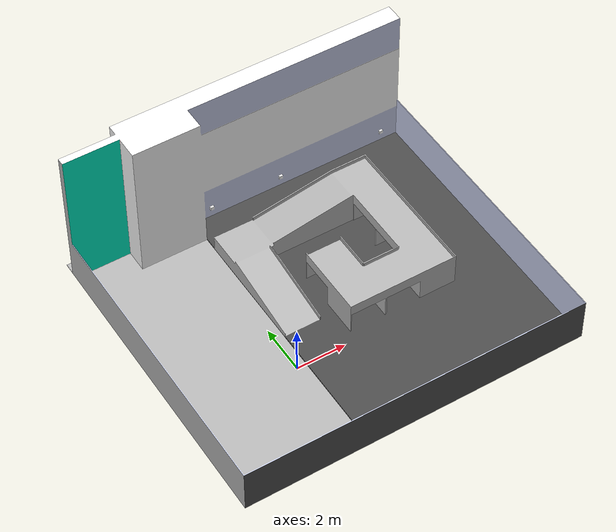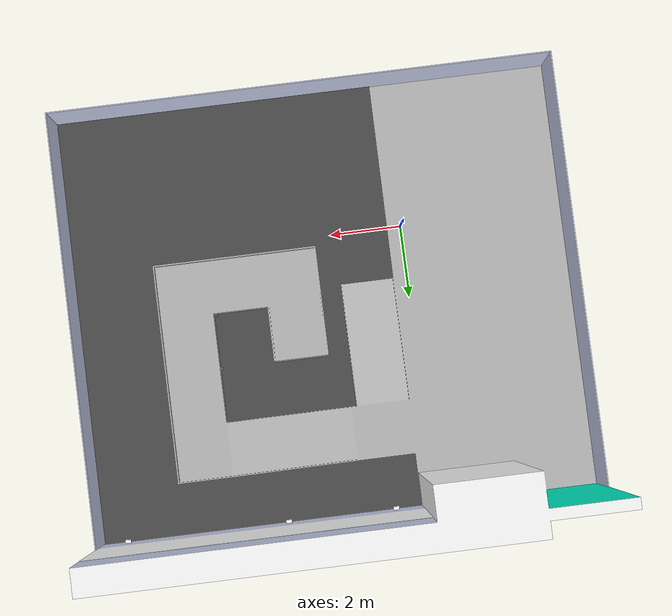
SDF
<?xml version='1.0' encoding='utf-8'?>
<sdf version='1.7'>
  <world name='default'>
    <physics name="1ms" type="ode">  <!-- 启用ODE物理引擎 -->
      <max_step_size>0.001</max_step_size>
      <real_time_factor>1.0</real_time_factor>
    </physics>
    <!-- 物理引擎插件 -->
    <plugin filename="libignition-gazebo-physics-system.so"
      name="ignition::gazebo::systems::Physics">
    </plugin>

    <!-- 场景广播插件（用于GUI显示） -->
    <plugin filename="libignition-gazebo-scene-broadcaster-system.so"
      name="ignition::gazebo::systems::SceneBroadcaster">
    </plugin>

    <!-- 用户指令处理插件 -->
    <plugin filename="libignition-gazebo-user-commands-system.so"
      name="ignition::gazebo::systems::UserCommands">
    </plugin>

    <!-- 传感器系统插件（含激光雷达） -->
    <plugin filename="libignition-gazebo-sensors-system.so"
      name="ignition::gazebo::systems::Sensors">
      <render_engine>ogre2</render_engine>
    </plugin>

    <!-- IMU传感器插件 -->
    <plugin filename="libignition-gazebo-imu-system.so"
      name="ignition::gazebo::systems::Imu">
    </plugin>

    <!-- 接触传感器插件（碰撞检测） -->
    <plugin filename="libignition-gazebo-contact-system.so"
      name="ignition::gazebo::systems::Contact">
    </plugin>

    <!-- 前进（对应键盘按键：上箭头） -->
    <plugin
      filename="libignition-gazebo-triggered-publisher-system.so"
      name="ignition::gazebo::systems::TriggeredPublisher">
      <input type="ignition.msgs.Int32" topic="/keyboard/keypress">
        <match field="data">16777235</match>
      </input>
      <output type="ignition.msgs.Twist" topic="/cmd_vel">
        linear: {x: 0.5}, angular: {z: 0.0}
      </output>
    </plugin>

    <!-- 后退（对应键盘按键：下箭头） -->
    <plugin
      filename="libignition-gazebo-triggered-publisher-system.so"
      name="ignition::gazebo::systems::TriggeredPublisher">
      <input type="ignition.msgs.Int32" topic="/keyboard/keypress">
        <match field="data">16777237</match>
      </input>
      <output type="ignition.msgs.Twist" topic="/cmd_vel">
        linear: {x: -0.5}, angular: {z: 0.0}
      </output>
    </plugin>

    <!-- 左转（对应键盘按键：左箭头） -->
    <plugin
      filename="libignition-gazebo-triggered-publisher-system.so"
      name="ignition::gazebo::systems::TriggeredPublisher">
      <input type="ignition.msgs.Int32" topic="/keyboard/keypress">
        <match field="data">16777234</match>
      </input>
      <output type="ignition.msgs.Twist" topic="/cmd_vel">
        linear: {x: 0.0}, angular: {z: 0.5}
      </output>
    </plugin>

    <!-- 右转（对应键盘按键：右箭头） -->
    <plugin
      filename="libignition-gazebo-triggered-publisher-system.so"
      name="ignition::gazebo::systems::TriggeredPublisher">
      <input type="ignition.msgs.Int32" topic="/keyboard/keypress">
        <match field="data">16777236</match>
      </input>
      <output type="ignition.msgs.Twist" topic="/cmd_vel">
        linear: {x: 0.0}, angular: {z: -0.5}
      </output>
    </plugin>

    <!-- 暂停 （对应键盘按键：空格键） -->
    <plugin
      filename="libignition-gazebo-triggered-publisher-system.so"
      name="ignition::gazebo::systems::TriggeredPublisher">
      <input type="ignition.msgs.Int32" topic="/keyboard/keypress">
        <match field="data">81</match>
      </input>
      <output type="ignition.msgs.Twist" topic="/cmd_vel">
        linear: {x: 0.0}, angular: {z: 0.0}
      </output>
    </plugin>

        <!-- W键：增加线速度 -->
    <plugin
      filename="libignition-gazebo-triggered-publisher-system.so"
      name="ignition::gazebo::systems::TriggeredPublisher">
      <input type="ignition.msgs.Int32" topic="/keyboard/keypress">
        <match field="data">87</match>
      </input>
      <output type="ignition.msgs.Twist" topic="/cmd_vel">
        linear: {x: 1.5}, angular: {z: 0.0}
      </output>
    </plugin>

    <!-- S键：减小线速度（更大的反向速度） -->
    <plugin
      filename="libignition-gazebo-triggered-publisher-system.so"
      name="ignition::gazebo::systems::TriggeredPublisher">
      <input type="ignition.msgs.Int32" topic="/keyboard/keypress">
        <match field="data">83</match>
      </input>
      <output type="ignition.msgs.Twist" topic="/cmd_vel">
        linear: {x: -1.5}, angular: {z: 0.0}
      </output>
    </plugin>

    <!-- A键：增加角速度（更快左转） -->
    <plugin
      filename="libignition-gazebo-triggered-publisher-system.so"
      name="ignition::gazebo::systems::TriggeredPublisher">
      <input type="ignition.msgs.Int32" topic="/keyboard/keypress">
        <match field="data">65</match>
      </input>
      <output type="ignition.msgs.Twist" topic="/cmd_vel">
        linear: {x: 0.0}, angular: {z: 1.0}
      </output>
    </plugin>

    <!-- D键：减小角速度（更快右转） -->
    <plugin
      filename="libignition-gazebo-triggered-publisher-system.so"
      name="ignition::gazebo::systems::TriggeredPublisher">
      <input type="ignition.msgs.Int32" topic="/keyboard/keypress">
        <match field="data">68</match>
      </input>
      <output type="ignition.msgs.Twist" topic="/cmd_vel">
        linear: {x: 0.0}, angular: {z: -1.0}
      </output>
    </plugin>

    <!-- 平行光设置 -->
    <light type='directional' name='direct_light'>
      <visualize>false</visualize>
      <cast_shadows>true</cast_shadows>
      <pose>14.6 7.9 10 0 0 0</pose>
      <diffuse>1.0 1.0 1.0 1</diffuse>
      <specular>0.5 0.5 0.5 1</specular>
      <attenuation>
        <range>1000</range>
        <constant>0.9</constant>
        <linear>0.01</linear>
        <quadratic>0.001</quadratic>
      </attenuation>
      <direction>0 0 -1</direction>
    </light>

    <!-- 环境模型 -->

    <model name='field_description'>
      <include>
        <uri>model://field_description</uri>
      </include>
      <pose>0 0 0 0 0 0</pose>
      <static>true</static>
    </model>

  </world>
</sdf>

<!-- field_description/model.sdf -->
<sdf version='1.9'>
  <model name='field_description'>
    <link name='base_link'>
      <inertial>
        <pose>0.500814010947333 -0.0392166317902097 -1.91270871235796 0 0 0</pose>
        <mass>13268.446324432</mass>
        <inertia>
          <ixx>36441.0637179572</ixx>
          <ixy>2153.9131365732601</ixy>
          <ixz>-1072.5221454924699</ixz>
          <iyy>61148.603361855901</iyy>
          <iyz>6731.7855539970997</iyz>
          <izz>71942.1605579936</izz>
        </inertia>
      </inertial>
      <collision name='collision'>
        <pose>0 0 2.55 0 0 0</pose>
        <geometry>
          <mesh>
            <scale>1500 1500 1500</scale>
            <uri>model://field_description/meshes/base_link.dae</uri>
          </mesh>
        </geometry>
      </collision>
      <visual name='base_link_visual'>
        <pose>0 0 2.55 0 0 0</pose>
        <geometry>
          <mesh>
            <scale>1500 1500 1500</scale>
            <uri>model://field_description/meshes/base_link.dae</uri>
          </mesh>
        </geometry>
      </visual>
    </link>
  </model>
</sdf>
